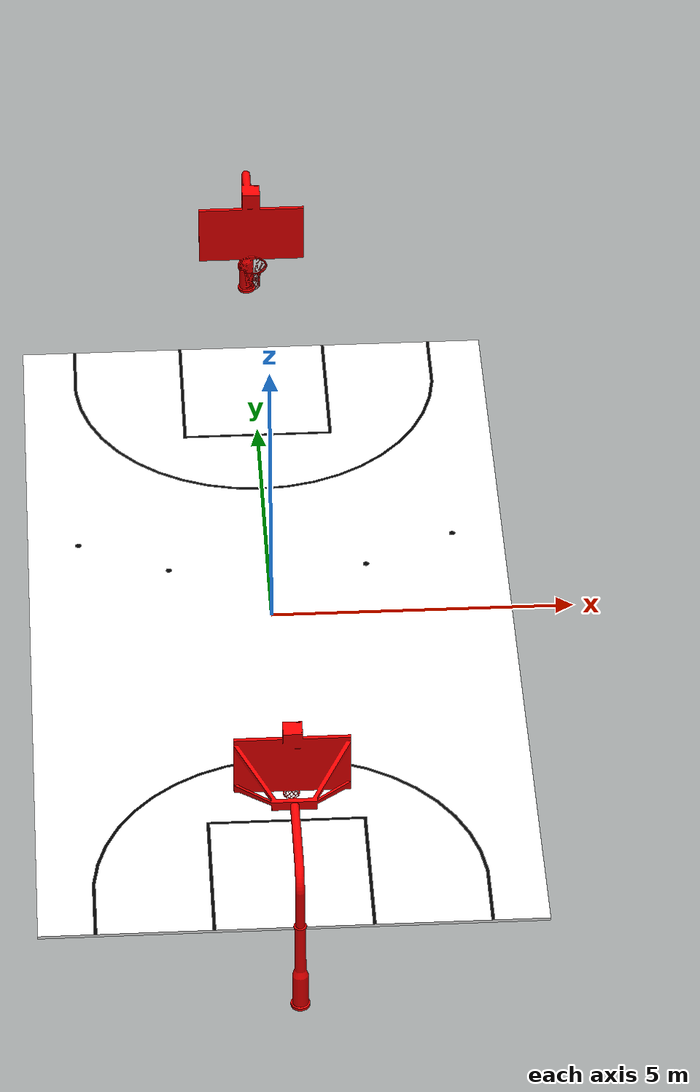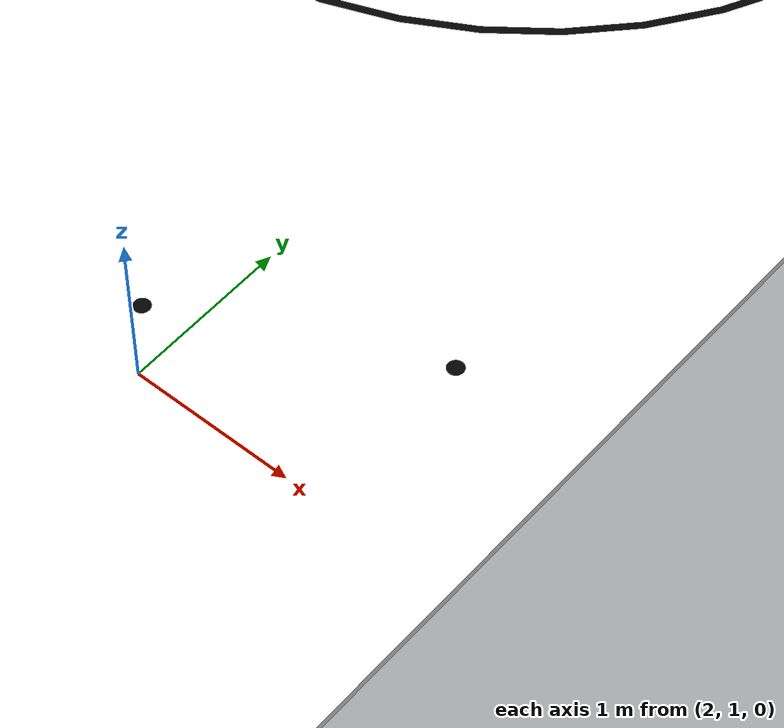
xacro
<?xml version="1.0" encoding="utf-8"?>
<robot name="santhidauv2" xmlns:xacro="https://www.ros.org/wiki/xacro">
  <link
    name="base_link">
    <inertial>
      <origin
        xyz="-0.0056828 -0.0072409 -0.3447"
        rpy="0 0 0" />
      <mass
        value="247220" />
      <inertia
        ixx="16315000"
        ixy="48904"
        ixz="-273.37"
        iyy="6733400"
        iyz="-348.26"
        izz="23039000" />
    </inertial>
    <visual>
      <origin
        xyz="0 0 0"
        rpy="0 0 1.5708" />
      <geometry>
        <mesh
          filename="file://$(find santhidauv2)/world/meshes/base_link.STL" />
      </geometry>
      <material
        name="">
        <color
          rgba="1 1 1 1" />
      </material>
    </visual>
    <collision>
      <origin
        xyz="0 0 0"
        rpy="0 0 0" />
      <geometry>
        <mesh
          filename="file://$(find santhidauv2)/world/meshes/base_link.STL" />
      </geometry>
    </collision>
  </link>
  <link
    name="basket_1">
    <inertial>
      <origin
        xyz="5.87632505144597E-06 -1.13225305486332 -0.0479835884916398"
        rpy="0 0 0" />
      <mass
        value="256.211781887934" />
      <inertia
        ixx="37.9700617415597"
        ixy="-1.75078330790823E-06"
        ixz="1.54569615661759E-06"
        iyy="58.402016115356"
        iyz="-4.30242382380639"
        izz="43.0969043665775" />
    </inertial>
    <visual>
      <origin
        xyz="0 0 0"
        rpy="0 0 0" />
      <geometry>
        <mesh
          filename="file://$(find santhidauv2)/world/meshes/basket_1.STL" />
      </geometry>
      <material
        name="">
        <color
          rgba="1 0 0 1" />
      </material>
    </visual>
    <collision>
      <origin
        xyz="0 0 0"
        rpy="0 0 0" />
      <geometry>
        <mesh
          filename="file://$(find santhidauv2)/world/meshes/basket_1.STL" />
      </geometry>
    </collision>
  </link>
  <joint
    name="basket1"
    type="fixed">
    <origin
      xyz="0 -6.6228 2.318"
      rpy="0 0 0" />
    <parent
      link="base_link" />
    <child
      link="basket_1" />
    <axis
      xyz="0 0 0" />
  </joint>
  <link
    name="basket_2">
    <inertial>
      <origin
        xyz="-5.87632505499869E-06 1.13225305486333 -0.0479835884916398"
        rpy="0 0 0" />
      <mass
        value="256.211781887931" />
      <inertia
        ixx="37.9700617415588"
        ixy="-1.75078333451089E-06"
        ixz="-1.54569610860818E-06"
        iyy="58.4020161153551"
        iyz="4.30242382380605"
        izz="43.0969043665767" />
    </inertial>
    <visual>
      <origin
        xyz="0 0 0"
        rpy="0 0 0" />
      <geometry>
        <mesh
          filename="file://$(find santhidauv2)/world/meshes/basket_2.STL" />
      </geometry>
      <material
        name="">
        <color
          rgba="1 0 0 1" />
      </material>
    </visual>
    <collision>
      <origin
        xyz="0 0 0"
        rpy="0 0 0" />
      <geometry>
        <mesh
          filename="file://$(find santhidauv2)/world/meshes/basket_2.STL" />
      </geometry>
    </collision>
  </link>
  <joint
    name="basket2"
    type="fixed">
    <origin
      xyz="0 6.6228 2.318"
      rpy="0 0 0" />
    <parent
      link="base_link" />
    <child
      link="basket_2" />
    <axis
      xyz="0 0 0" />
  </joint>
  <link
    name="part_blue_1">
    <inertial>
      <origin
        xyz="-1.77635683940025E-15 0.429250000000002 0.000249999999999861"
        rpy="0 0 0" />
      <mass
        value="0.187499999999982" />
      <inertia
        ixx="0.130247398437487"
        ixy="9.00886649332332E-17"
        ixz="4.41796078006604E-17"
        iyy="0.227929691406228"
        iyz="2.14826804147592E-17"
        izz="0.358177082031215" />
    </inertial>
    <visual>
      <origin
        xyz="0 0 0"
        rpy="0 0 0" />
      <geometry>
        <mesh
          filename="file://$(find santhidauv2)/world/meshes/part_blue_1.STL" />
      </geometry>
      <material
        name="">
        <color
          rgba="0 0 0 1" />
      </material>
    </visual>
    <collision>
      <origin
        xyz="0 0 0"
        rpy="0 0 0" />
      <geometry>
        <mesh
          filename="file://$(find santhidauv2)/world/meshes/part_blue_1.STL" />
      </geometry>
    </collision>
  </link>
  <joint
    name="partblue1"
    type="fixed">
    <origin
      xyz="0 -6.2625 -0.1"
      rpy="0 0 0" />
    <parent
      link="base_link" />
    <child
      link="part_blue_1" />
    <axis
      xyz="0 0 0" />
  </joint>
  <link
    name="part_blue_2">
    <inertial>
      <origin
        xyz="9.97635014599041E-07 0.552507406348708 0.000249999999999972"
        rpy="0 0 0" />
      <mass
        value="0.288298436383843" />
      <inertia
        ixx="0.444935649613053"
        ixy="6.75521921469997E-07"
        ixz="-7.22901370605254E-18"
        iyy="1.60479618282379"
        iyz="-1.00987988487437E-18"
        izz="2.04973182042441" />
    </inertial>
    <visual>
      <origin
        xyz="0 0 0"
        rpy="0 0 0" />
      <geometry>
        <mesh
          filename="file://$(find santhidauv2)/world/meshes/part_blue_2.STL" />
      </geometry>
      <material
        name="">
        <color
          rgba="0 0 0 1" />
      </material>
    </visual>
    <collision>
      <origin
        xyz="0 0 0"
        rpy="0 0 0" />
      <geometry>
        <mesh
          filename="file://$(find santhidauv2)/world/meshes/part_blue_2.STL" />
      </geometry>
    </collision>
  </link>
  <joint
    name="partblue2"
    type="fixed">
    <origin
      xyz="0 -5.5618 -0.1"
      rpy="0 0 0" />
    <parent
      link="base_link" />
    <child
      link="part_blue_2" />
    <axis
      xyz="0 0 0" />
  </joint>
  <link
    name="part_red_1">
    <inertial>
      <origin
        xyz="-1.77635683940025E-15 -0.429250000000003 0.000249999999999861"
        rpy="0 0 0" />
      <mass
        value="0.187499999999982" />
      <inertia
        ixx="0.130247398437488"
        ixy="7.68021713934418E-16"
        ixz="-9.45193215481462E-18"
        iyy="0.227929691406221"
        iyz="-2.69640562250989E-18"
        izz="0.358177082031209" />
    </inertial>
    <visual>
      <origin
        xyz="0 0 0"
        rpy="0 0 0" />
      <geometry>
        <mesh
          filename="file://$(find santhidauv2)/world/meshes/part_red_1.STL" />
      </geometry>
      <material
        name="">
        <color
          rgba="0 0 0 1" />
      </material>
    </visual>
    <collision>
      <origin
        xyz="0 0 0"
        rpy="0 0 0" />
      <geometry>
        <mesh
          filename="file://$(find santhidauv2)/world/meshes/part_red_1.STL" />
      </geometry>
    </collision>
  </link>
  <joint
    name="partred1"
    type="fixed">
    <origin
      xyz="0 6.2625 -0.1"
      rpy="0 0 0" />
    <parent
      link="base_link" />
    <child
      link="part_red_1" />
    <axis
      xyz="0 0 0" />
  </joint>
  <link
    name="part_red_2">
    <inertial>
      <origin
        xyz="9.976350039409E-07 -0.552507406348749 0.000250000000000306"
        rpy="0 0 0" />
      <mass
        value="0.288298436383972" />
      <inertia
        ixx="0.444935649613115"
        ixy="-6.75521916528729E-07"
        ixz="5.00831401416545E-17"
        iyy="1.60479618282416"
        iyz="-1.0213526710316E-17"
        izz="2.04973182042484" />
    </inertial>
    <visual>
      <origin
        xyz="0 0 0"
        rpy="0 0 0" />
      <geometry>
        <mesh
          filename="file://$(find santhidauv2)/world/meshes/part_red_2.STL" />
      </geometry>
      <material
        name="">
        <color
          rgba="0 0 0 1" />
      </material>
    </visual>
    <collision>
      <origin
        xyz="0 0 0"
        rpy="0 0 0" />
      <geometry>
        <mesh
          filename="file://$(find santhidauv2)/world/meshes/part_red_2.STL" />
      </geometry>
    </collision>
  </link>
  <joint
    name="partred2"
    type="fixed">
    <origin
      xyz="0 5.5618 -0.1"
      rpy="0 0 0" />
    <parent
      link="base_link" />
    <child
      link="part_red_2" />
    <axis
      xyz="0 0 0" />
  </joint>
  <link
    name="car_1">
    <inertial>
      <origin
        xyz="0 0 -0.000249999999999861"
        rpy="0 0 0" />
      <mass
        value="0.00392699081698815" />
      <inertia
        ixx="2.45445107292685E-06"
        ixy="-7.72410504633546E-41"
        ixz="4.65003208422974E-27"
        iyy="2.45445107292685E-06"
        iyz="4.07749716508468E-24"
        izz="4.90873852123632E-06" />
    </inertial>
    <visual>
      <origin
        xyz="0 0 0"
        rpy="0 0 0" />
      <geometry>
        <mesh
          filename="file://$(find santhidauv2)/world/meshes/car_1.STL" />
      </geometry>
      <material
        name="">
        <color
          rgba="0 0 0 1" />
      </material>
    </visual>
    <collision>
      <origin
        xyz="0 0 0"
        rpy="0 0 0" />
      <geometry>
        <mesh
          filename="file://$(find santhidauv2)/world/meshes/car_1.STL" />
      </geometry>
    </collision>
  </link>
  <joint
    name="car1"
    type="fixed">
    <origin
      xyz="3.1496 2.1246 -0.0995"
      rpy="0 0 0" />
    <parent
      link="base_link" />
    <child
      link="car_1" />
    <axis
      xyz="0 0 0" />
  </joint>
  <link
    name="car_2">
    <inertial>
      <origin
        xyz="-0.00133330267301002 0.00496517215259651 0.00758352273570367"
        rpy="0 0 0" />
      <mass
        value="0.0039269908169868" />
      <inertia
        ixx="2.4544510729257E-06"
        ixy="-1.9759978511221E-40"
        ixz="4.65003208430027E-27"
        iyy="2.4544510729257E-06"
        iyz="4.07749716497997E-24"
        izz="4.90873852123403E-06" />
    </inertial>
    <visual>
      <origin
        xyz="0 0 0"
        rpy="0 0 0" />
      <geometry>
        <mesh
          filename="file://$(find santhidauv2)/world/meshes/car_2.STL" />
      </geometry>
      <material
        name="">
        <color
          rgba="0 0 0 1" />
      </material>
    </visual>
    <collision>
      <origin
        xyz="0 0 0"
        rpy="0 0 0" />
      <geometry>
        <mesh
          filename="file://$(find santhidauv2)/world/meshes/car_2.STL" />
      </geometry>
    </collision>
  </link>
  <joint
    name="car2"
    type="fixed">
    <origin
      xyz="1.6525684565338 1.38074631430848 -0.107333522735703"
      rpy="0 0 0" />
    <parent
      link="base_link" />
    <child
      link="car_2" />
    <axis
      xyz="0 0 0" />
  </joint>
  <link
    name="car_3">
    <inertial>
      <origin
        xyz="0 -1.77635683940025E-15 -0.000250000000000083"
        rpy="0 0 0" />
      <mass
        value="0.00392699081698697" />
      <inertia
        ixx="2.45445107292564E-06"
        ixy="6.34140417483828E-42"
        ixz="4.65003208432378E-27"
        iyy="2.45445107292564E-06"
        iyz="3.19517117818344E-24"
        izz="4.9087385212339E-06" />
    </inertial>
    <visual>
      <origin
        xyz="0 0 0"
        rpy="0 0 0" />
      <geometry>
        <mesh
          filename="file://$(find santhidauv2)/world/meshes/car_3.STL" />
      </geometry>
      <material
        name="">
        <color
          rgba="0 0 0 1" />
      </material>
    </visual>
    <collision>
      <origin
        xyz="0 0 0"
        rpy="0 0 0" />
      <geometry>
        <mesh
          filename="file://$(find santhidauv2)/world/meshes/car_3.STL" />
      </geometry>
    </collision>
  </link>
  <joint
    name="car3"
    type="fixed">
    <origin
      xyz="0 1.1316 -0.0995"
      rpy="0 0 0" />
    <parent
      link="base_link" />
    <child
      link="car_3" />
    <axis
      xyz="0 0 0" />
  </joint>
  <link
    name="car_4">
    <inertial>
      <origin
        xyz="-1.77635683940025E-15 3.5527136788005E-15 -0.000249999999999972"
        rpy="0 0 0" />
      <mass
        value="0.0039269908169868" />
      <inertia
        ixx="2.4544510729257E-06"
        ixy="-1.975997851122E-40"
        ixz="4.65003208430027E-27"
        iyy="2.4544510729257E-06"
        iyz="4.07749716497997E-24"
        izz="4.90873852123403E-06" />
    </inertial>
    <visual>
      <origin
        xyz="0 0 0"
        rpy="0 0 0" />
      <geometry>
        <mesh
          filename="file://$(find santhidauv2)/world/meshes/car_4.STL" />
      </geometry>
      <material
        name="">
        <color
          rgba="0 0 0 1" />
      </material>
    </visual>
    <collision>
      <origin
        xyz="0 0 0"
        rpy="0 0 0" />
      <geometry>
        <mesh
          filename="file://$(find santhidauv2)/world/meshes/car_4.STL" />
      </geometry>
    </collision>
  </link>
  <joint
    name="car4"
    type="fixed">
    <origin
      xyz="-1.6512 1.3857 -0.0995"
      rpy="0 0 0" />
    <parent
      link="base_link" />
    <child
      link="car_4" />
    <axis
      xyz="0 0 0" />
  </joint>
  <link
    name="car_5">
    <inertial>
      <origin
        xyz="0 0 0"
        rpy="0 0 0" />
      <mass
        value="0" />
      <inertia
        ixx="0"
        ixy="0"
        ixz="0"
        iyy="0"
        iyz="0"
        izz="0" />
    </inertial>
    <visual>
      <origin
        xyz="0 0 0"
        rpy="0 0 0" />
      <geometry>
        <mesh
          filename="file://$(find santhidauv2)/world/meshes/car_5.STL" />
      </geometry>
      <material
        name="">
        <color
          rgba="0 0 0 1" />
      </material>
    </visual>
    <collision>
      <origin
        xyz="0 0 0"
        rpy="0 0 0" />
      <geometry>
        <mesh
          filename="file://$(find santhidauv2)/world/meshes/car_5.STL" />
      </geometry>
    </collision>
  </link>
  <joint
    name="car5"
    type="fixed">
    <origin
      xyz="-3.1496 2.1246 -0.0995"
      rpy="0 0 0" />
    <parent
      link="base_link" />
    <child
      link="car_5" />
    <axis
      xyz="0 0 0" />
  </joint>
</robot>
